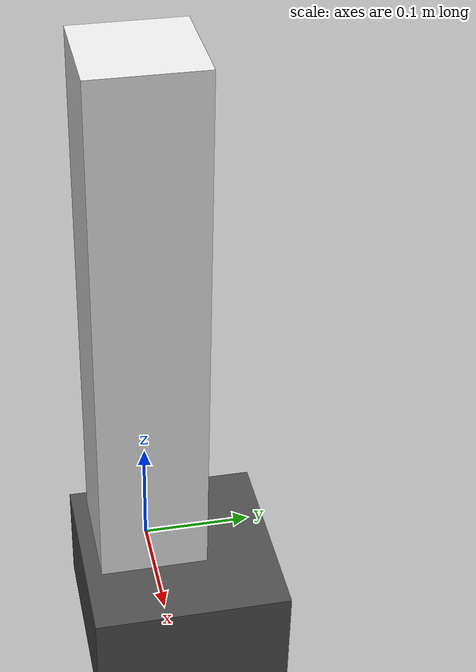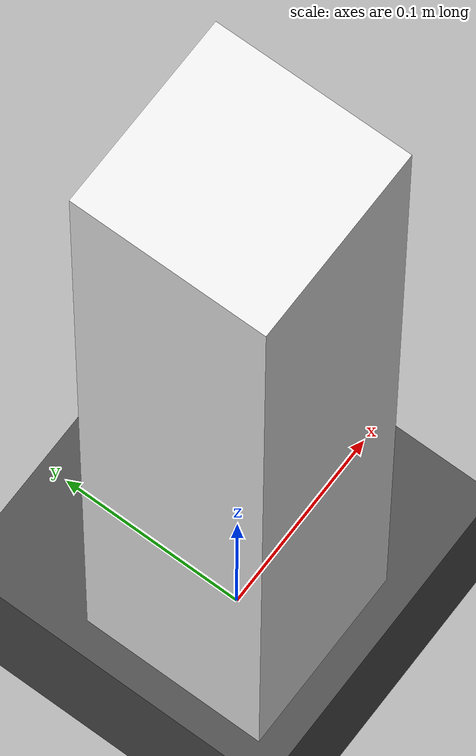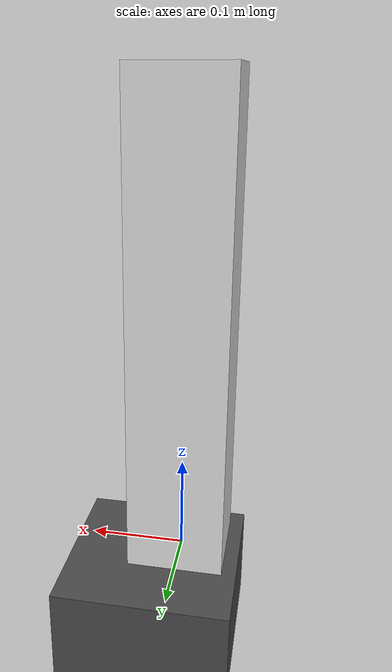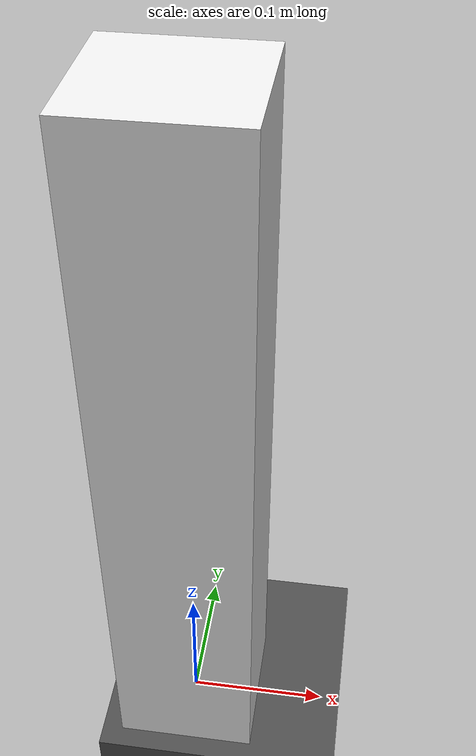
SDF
<?xml version="1.0" ?>
<sdf version="1.5">

  <world name="AveroWorld">
    <!-- A global light source -->
    <include>
      <uri>model://sun</uri>
    </include>

    <!-- Ground -->
    <model name="ground">
      <pose>0 0 -0.05 0 0 0</pose>
      <static>true</static>
      <link name="link">
        <visual name="visual">
          <geometry>
            <box>
              <size>30 30 0.1</size> <!-- Define the size of the box: width, depth, height -->
            </box>
          </geometry>
          <material>
            <script>
              <name>Gazebo/DarkGrey</name>
              <uri>file://media/materials/scripts/gazebo.material</uri>
            </script>
          </material>
        </visual>
        <collision name="collision">
          <geometry>
            <box>
              <size>30 30 0.1</size> <!-- Define the size of the box: width, depth, height -->
            </box>
          </geometry>
        </collision>
      </link>
    </model>

    <!-- Define the drone stand -->
    <model name="my_box">
      <pose>0 0 0.25 0 0 0</pose>
      <static>true</static>
      <link name="link">
        <visual name="visual">
          <geometry>
            <box>
              <size>0.1 0.1 0.5</size> <!-- Define the size of the box: width, depth, height -->
            </box>
          </geometry>
          <material>
            <script>
              <name>Gazebo/White</name>
              <uri>file://media/materials/scripts/gazebo.material</uri>
            </script>
          </material>
        </visual>
        <collision name="collision">
          <geometry>
            <box>
              <size>0.1 0.1 0.5</size> <!-- Define the size of the box: width, depth, height -->
            </box>
          </geometry>
        </collision>
      </link>
    </model>

    <!-- Only one ROS interface plugin is required per world, as any other plugin can connect a Gazebo
    topic to a ROS topic (or vise versa). -->
    <plugin name="ros_interface_plugin" filename="librotors_gazebo_ros_interface_plugin.so"/>

    <!--Add Physics to the world-->
    <physics name='default_physics' default='0' type='ode'>
      <gravity>0 0 -9.8066</gravity>
      <ode>
        <solver>
          <type>quick</type>
          <iters>10</iters>
          <sor>1.3</sor>
          <use_dynamic_moi_rescaling>0</use_dynamic_moi_rescaling>
        </solver>
        <constraints>
          <cfm>0</cfm>
          <erp>0.2</erp>
          <contact_max_correcting_vel>100</contact_max_correcting_vel>
          <contact_surface_layer>0.001</contact_surface_layer>
        </constraints>
      </ode>
      <max_step_size>0.002</max_step_size>
      <real_time_factor>1</real_time_factor>
      <real_time_update_rate>100</real_time_update_rate>
      <magnetic_field>6e-06 2.3e-05 -4.2e-05</magnetic_field>
    </physics>
  </world>
</sdf>
